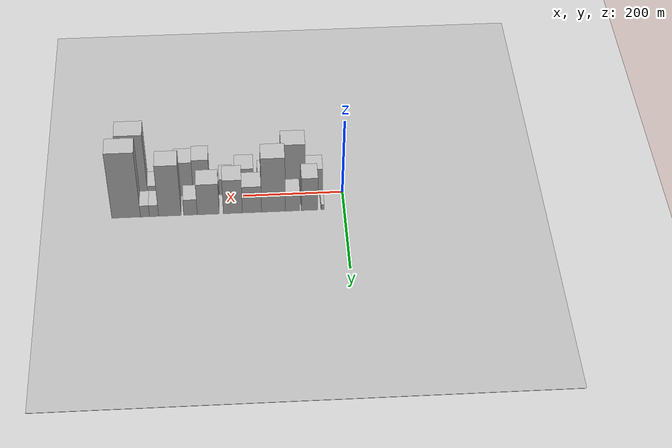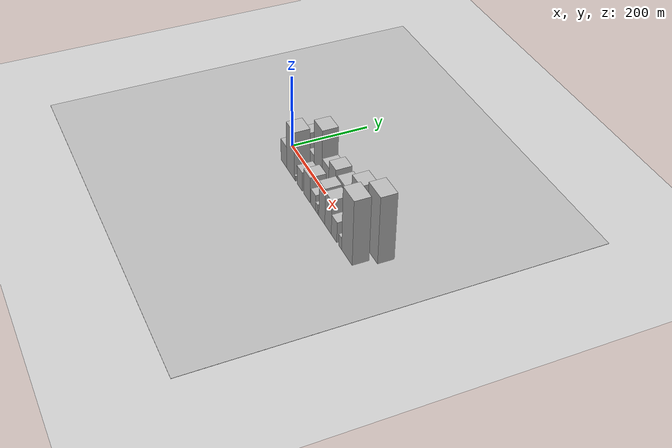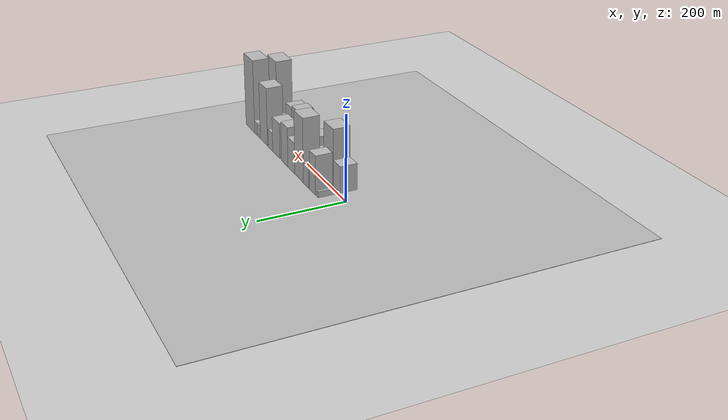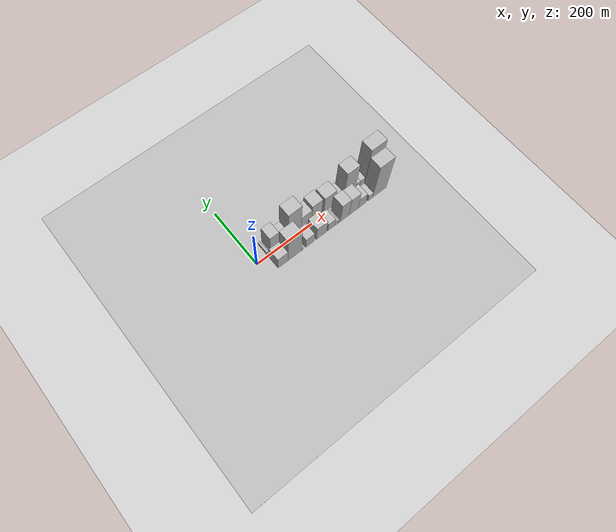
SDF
<?xml version="1.0" encoding="utf-8"?>

<sdf version="1.6">

   <world name="default">

      <gui fullscreen="0">

         <camera name="user_camera">

            <pose>-15 0 4.57585 0 0 0</pose>

            <view_controller>orbit</view_controller>

         </camera>

      </gui>

      <scene>

         <sky>

           <clouds>

             <speed>12</speed>

           </clouds>

         </sky>

         <ambient>0.4 0.4 0.4 1</ambient>

         <background>0.7 0.7 0.7 1</background>

         <shadows>1</shadows>

      </scene>

      <gravity>0 0 -9.8066</gravity>

      <magnetic_field>6e-06 2.3e-05 -4.2e-05</magnetic_field>

      <physics default="0" name="default_physics" type="ode">

         <ode>

            <solver>

               <type>quick</type>

               <iters>10</iters>

               <sor>1.0</sor>

               <use_dynamic_moi_rescaling>0</use_dynamic_moi_rescaling>

            </solver>

            <constraints>

               <cfm>0</cfm>

               <erp>0.2</erp>

               <contact_max_correcting_vel>100</contact_max_correcting_vel>

               <contact_surface_layer>0.001</contact_surface_layer>

            </constraints>

         </ode>

         <max_step_size>0.004</max_step_size>

         <real_time_factor>1</real_time_factor>

         <real_time_update_rate>250</real_time_update_rate>

      </physics>

      <light name="sun" type="directional">

         <cast_shadows>1</cast_shadows>

         <pose>0 0 10 0 0 0</pose>

         <diffuse>0.8 0.8 0.8 1</diffuse>

         <specular>0.2 0.2 0.2 1</specular>

         <attenuation>

            <range>1000</range>

            <constant>0.9</constant>

            <linear>0.01</linear>

            <quadratic>0.001</quadratic>

         </attenuation>

         <direction>-0.5 0.1 -0.9</direction>

      </light>

      <include>

         <name>ground_plane_1</name>

         <uri>model://HANNAS_ground_plane</uri>

         <pose>0 0 0  0 0 0</pose>

      </include>

      <include>

         <name>ground_plane_2</name>

         <uri>model://HANNAS_ground_plane</uri>

         <pose>100 0 0  0 0 0</pose>

      </include>

      <model name="building_1">

         <static>1</static>

         <pose frame="">43.1794 26.0000 0 0.000000 0.000000 1.570796</pose>

         <link name="link">

            <pose frame="">0 0 7.50 0 0 0</pose>

            <collision name="collision">

               <geometry>

                  <box>

                     <size>40.0000 6.3588 15.0000</size>

                  </box>

               </geometry>

               <max_contacts>10</max_contacts>

               <surface>

                  <contact>

                     <ode/>

                  </contact>

                  <bounce/>

                  <friction>

                     <torsional>

                        <ode/>

                     </torsional>

                     <ode/>

                  </friction>

               </surface>

            </collision>

            <visual name="visual">

               <cast_shadows>0</cast_shadows>

               <geometry>

                  <box>

                     <size>40.0000 6.3588 15.0000</size>

                  </box>

               </geometry>

               <material>

                  <script>

                     <uri>model://HANNAS_wall/materials/scripts</uri>

                     <uri>model://HANNAS_wall/materials/textures</uri>

                     <name>vrc/HANNAS_wall</name>

                  </script>

               </material>

            </visual>

            <self_collide>0</self_collide>

            <enable_wind>0</enable_wind>

            <kinematic>0</kinematic>

         </link>

      </model>

      <model name="building_2">

         <static>1</static>

         <pose frame="">69.4777 26.0000 0 0.000000 0.000000 1.570796</pose>

         <link name="link">

            <pose frame="">0 0 46.50 0 0 0</pose>

            <collision name="collision">

               <geometry>

                  <box>

                     <size>40.0000 32.2377 93.0000</size>

                  </box>

               </geometry>

               <max_contacts>10</max_contacts>

               <surface>

                  <contact>

                     <ode/>

                  </contact>

                  <bounce/>

                  <friction>

                     <torsional>

                        <ode/>

                     </torsional>

                     <ode/>

                  </friction>

               </surface>

            </collision>

            <visual name="visual">

               <cast_shadows>0</cast_shadows>

               <geometry>

                  <box>

                     <size>40.0000 32.2377 93.0000</size>

                  </box>

               </geometry>

               <material>

                  <script>

                     <uri>model://HANNAS_wall/materials/scripts</uri>

                     <uri>model://HANNAS_wall/materials/textures</uri>

                     <name>vrc/HANNAS_wall</name>

                  </script>

               </material>

            </visual>

            <self_collide>0</self_collide>

            <enable_wind>0</enable_wind>

            <kinematic>0</kinematic>

         </link>

      </model>

      <model name="building_3">

         <static>1</static>

         <pose frame="">103.2718 26.0000 0 0.000000 0.000000 1.570796</pose>

         <link name="link">

            <pose frame="">0 0 25.50 0 0 0</pose>

            <collision name="collision">

               <geometry>

                  <box>

                     <size>40.0000 29.3504 51.0000</size>

                  </box>

               </geometry>

               <max_contacts>10</max_contacts>

               <surface>

                  <contact>

                     <ode/>

                  </contact>

                  <bounce/>

                  <friction>

                     <torsional>

                        <ode/>

                     </torsional>

                     <ode/>

                  </friction>

               </surface>

            </collision>

            <visual name="visual">

               <cast_shadows>0</cast_shadows>

               <geometry>

                  <box>

                     <size>40.0000 29.3504 51.0000</size>

                  </box>

               </geometry>

               <material>

                  <script>

                     <uri>model://HANNAS_wall/materials/scripts</uri>

                     <uri>model://HANNAS_wall/materials/textures</uri>

                     <name>vrc/HANNAS_wall</name>

                  </script>

               </material>

            </visual>

            <self_collide>0</self_collide>

            <enable_wind>0</enable_wind>

            <kinematic>0</kinematic>

         </link>

      </model>

      <model name="building_4">

         <static>1</static>

         <pose frame="">141.5187 26.0000 0 0.000000 0.000000 1.570796</pose>

         <link name="link">

            <pose frame="">0 0 76.50 0 0 0</pose>

            <collision name="collision">

               <geometry>

                  <box>

                     <size>40.0000 47.1435 153.0000</size>

                  </box>

               </geometry>

               <max_contacts>10</max_contacts>

               <surface>

                  <contact>

                     <ode/>

                  </contact>

                  <bounce/>

                  <friction>

                     <torsional>

                        <ode/>

                     </torsional>

                     <ode/>

                  </friction>

               </surface>

            </collision>

            <visual name="visual">

               <cast_shadows>0</cast_shadows>

               <geometry>

                  <box>

                     <size>40.0000 47.1435 153.0000</size>

                  </box>

               </geometry>

               <material>

                  <script>

                     <uri>model://HANNAS_wall/materials/scripts</uri>

                     <uri>model://HANNAS_wall/materials/textures</uri>

                     <name>vrc/HANNAS_wall</name>

                  </script>

               </material>

            </visual>

            <self_collide>0</self_collide>

            <enable_wind>0</enable_wind>

            <kinematic>0</kinematic>

         </link>

      </model>

      <model name="building_5">

         <static>1</static>

         <pose frame="">184.1738 26.0000 0 0.000000 0.000000 1.570796</pose>

         <link name="link">

            <pose frame="">0 0 37.50 0 0 0</pose>

            <collision name="collision">

               <geometry>

                  <box>

                     <size>40.0000 38.1667 75.0000</size>

                  </box>

               </geometry>

               <max_contacts>10</max_contacts>

               <surface>

                  <contact>

                     <ode/>

                  </contact>

                  <bounce/>

                  <friction>

                     <torsional>

                        <ode/>

                     </torsional>

                     <ode/>

                  </friction>

               </surface>

            </collision>

            <visual name="visual">

               <cast_shadows>0</cast_shadows>

               <geometry>

                  <box>

                     <size>40.0000 38.1667 75.0000</size>

                  </box>

               </geometry>

               <material>

                  <script>

                     <uri>model://HANNAS_wall/materials/scripts</uri>

                     <uri>model://HANNAS_wall/materials/textures</uri>

                     <name>vrc/HANNAS_wall</name>

                  </script>

               </material>

            </visual>

            <self_collide>0</self_collide>

            <enable_wind>0</enable_wind>

            <kinematic>0</kinematic>

         </link>

      </model>

      <model name="building_6">

         <static>1</static>

         <pose frame="">222.2091 26.0000 0 0.000000 0.000000 1.570796</pose>

         <link name="link">

            <pose frame="">0 0 48.00 0 0 0</pose>

            <collision name="collision">

               <geometry>

                  <box>

                     <size>40.0000 37.9039 96.0000</size>

                  </box>

               </geometry>

               <max_contacts>10</max_contacts>

               <surface>

                  <contact>

                     <ode/>

                  </contact>

                  <bounce/>

                  <friction>

                     <torsional>

                        <ode/>

                     </torsional>

                     <ode/>

                  </friction>

               </surface>

            </collision>

            <visual name="visual">

               <cast_shadows>0</cast_shadows>

               <geometry>

                  <box>

                     <size>40.0000 37.9039 96.0000</size>

                  </box>

               </geometry>

               <material>

                  <script>

                     <uri>model://HANNAS_wall/materials/scripts</uri>

                     <uri>model://HANNAS_wall/materials/textures</uri>

                     <name>vrc/HANNAS_wall</name>

                  </script>

               </material>

            </visual>

            <self_collide>0</self_collide>

            <enable_wind>0</enable_wind>

            <kinematic>0</kinematic>

         </link>

      </model>

      <model name="building_7">

         <static>1</static>

         <pose frame="">271.0043 26.0000 0 0.000000 0.000000 1.570796</pose>

         <link name="link">

            <pose frame="">0 0 43.50 0 0 0</pose>

            <collision name="collision">

               <geometry>

                  <box>

                     <size>40.0000 43.6865 87.0000</size>

                  </box>

               </geometry>

               <max_contacts>10</max_contacts>

               <surface>

                  <contact>

                     <ode/>

                  </contact>

                  <bounce/>

                  <friction>

                     <torsional>

                        <ode/>

                     </torsional>

                     <ode/>

                  </friction>

               </surface>

            </collision>

            <visual name="visual">

               <cast_shadows>0</cast_shadows>

               <geometry>

                  <box>

                     <size>40.0000 43.6865 87.0000</size>

                  </box>

               </geometry>

               <material>

                  <script>

                     <uri>model://HANNAS_wall/materials/scripts</uri>

                     <uri>model://HANNAS_wall/materials/textures</uri>

                     <name>vrc/HANNAS_wall</name>

                  </script>

               </material>

            </visual>

            <self_collide>0</self_collide>

            <enable_wind>0</enable_wind>

            <kinematic>0</kinematic>

         </link>

      </model>

      <model name="building_8">

         <static>1</static>

         <pose frame="">306.3330 26.0000 0 0.000000 0.000000 1.570796</pose>

         <link name="link">

            <pose frame="">0 0 22.50 0 0 0</pose>

            <collision name="collision">

               <geometry>

                  <box>

                     <size>40.0000 26.9708 45.0000</size>

                  </box>

               </geometry>

               <max_contacts>10</max_contacts>

               <surface>

                  <contact>

                     <ode/>

                  </contact>

                  <bounce/>

                  <friction>

                     <torsional>

                        <ode/>

                     </torsional>

                     <ode/>

                  </friction>

               </surface>

            </collision>

            <visual name="visual">

               <cast_shadows>0</cast_shadows>

               <geometry>

                  <box>

                     <size>40.0000 26.9708 45.0000</size>

                  </box>

               </geometry>

               <material>

                  <script>

                     <uri>model://HANNAS_wall/materials/scripts</uri>

                     <uri>model://HANNAS_wall/materials/textures</uri>

                     <name>vrc/HANNAS_wall</name>

                  </script>

               </material>

            </visual>

            <self_collide>0</self_collide>

            <enable_wind>0</enable_wind>

            <kinematic>0</kinematic>

         </link>

      </model>

      <model name="building_9">

         <static>1</static>

         <pose frame="">347.2610 26.0000 0 0.000000 0.000000 1.570796</pose>

         <link name="link">

            <pose frame="">0 0 72.00 0 0 0</pose>

            <collision name="collision">

               <geometry>

                  <box>

                     <size>40.0000 44.8853 144.0000</size>

                  </box>

               </geometry>

               <max_contacts>10</max_contacts>

               <surface>

                  <contact>

                     <ode/>

                  </contact>

                  <bounce/>

                  <friction>

                     <torsional>

                        <ode/>

                     </torsional>

                     <ode/>

                  </friction>

               </surface>

            </collision>

            <visual name="visual">

               <cast_shadows>0</cast_shadows>

               <geometry>

                  <box>

                     <size>40.0000 44.8853 144.0000</size>

                  </box>

               </geometry>

               <material>

                  <script>

                     <uri>model://HANNAS_wall/materials/scripts</uri>

                     <uri>model://HANNAS_wall/materials/textures</uri>

                     <name>vrc/HANNAS_wall</name>

                  </script>

               </material>

            </visual>

            <self_collide>0</self_collide>

            <enable_wind>0</enable_wind>

            <kinematic>0</kinematic>

         </link>

      </model>

      <model name="building_10">

         <static>1</static>

         <pose frame="">378.7349 26.0000 0 0.000000 0.000000 1.570796</pose>

         <link name="link">

            <pose frame="">0 0 16.50 0 0 0</pose>

            <collision name="collision">

               <geometry>

                  <box>

                     <size>40.0000 18.0625 33.0000</size>

                  </box>

               </geometry>

               <max_contacts>10</max_contacts>

               <surface>

                  <contact>

                     <ode/>

                  </contact>

                  <bounce/>

                  <friction>

                     <torsional>

                        <ode/>

                     </torsional>

                     <ode/>

                  </friction>

               </surface>

            </collision>

            <visual name="visual">

               <cast_shadows>0</cast_shadows>

               <geometry>

                  <box>

                     <size>40.0000 18.0625 33.0000</size>

                  </box>

               </geometry>

               <material>

                  <script>

                     <uri>model://HANNAS_wall/materials/scripts</uri>

                     <uri>model://HANNAS_wall/materials/textures</uri>

                     <name>vrc/HANNAS_wall</name>

                  </script>

               </material>

            </visual>

            <self_collide>0</self_collide>

            <enable_wind>0</enable_wind>

            <kinematic>0</kinematic>

         </link>

      </model>

      <model name="building_11">

         <static>1</static>

         <pose frame="">396.6693 26.0000 0 0.000000 0.000000 1.570796</pose>

         <link name="link">

            <pose frame="">0 0 16.50 0 0 0</pose>

            <collision name="collision">

               <geometry>

                  <box>

                     <size>40.0000 17.8061 33.0000</size>

                  </box>

               </geometry>

               <max_contacts>10</max_contacts>

               <surface>

                  <contact>

                     <ode/>

                  </contact>

                  <bounce/>

                  <friction>

                     <torsional>

                        <ode/>

                     </torsional>

                     <ode/>

                  </friction>

               </surface>

            </collision>

            <visual name="visual">

               <cast_shadows>0</cast_shadows>

               <geometry>

                  <box>

                     <size>40.0000 17.8061 33.0000</size>

                  </box>

               </geometry>

               <material>

                  <script>

                     <uri>model://HANNAS_wall/materials/scripts</uri>

                     <uri>model://HANNAS_wall/materials/textures</uri>

                     <name>vrc/HANNAS_wall</name>

                  </script>

               </material>

            </visual>

            <self_collide>0</self_collide>

            <enable_wind>0</enable_wind>

            <kinematic>0</kinematic>

         </link>

      </model>

      <model name="building_12">

         <static>1</static>

         <pose frame="">433.9450 26.0000 0 0.000000 0.000000 1.570796</pose>

         <link name="link">

            <pose frame="">0 0 91.50 0 0 0</pose>

            <collision name="collision">

               <geometry>

                  <box>

                     <size>40.0000 56.7453 183.0000</size>

                  </box>

               </geometry>

               <max_contacts>10</max_contacts>

               <surface>

                  <contact>

                     <ode/>

                  </contact>

                  <bounce/>

                  <friction>

                     <torsional>

                        <ode/>

                     </torsional>

                     <ode/>

                  </friction>

               </surface>

            </collision>

            <visual name="visual">

               <cast_shadows>0</cast_shadows>

               <geometry>

                  <box>

                     <size>40.0000 56.7453 183.0000</size>

                  </box>

               </geometry>

               <material>

                  <script>

                     <uri>model://HANNAS_wall/materials/scripts</uri>

                     <uri>model://HANNAS_wall/materials/textures</uri>

                     <name>vrc/HANNAS_wall</name>

                  </script>

               </material>

            </visual>

            <self_collide>0</self_collide>

            <enable_wind>0</enable_wind>

            <kinematic>0</kinematic>

         </link>

      </model>

      <model name="building_13">

         <static>1</static>

         <pose frame="">57.9103 -26.0000 0 0.000000 0.000000 1.570796</pose>

         <link name="link">

            <pose frame="">0 0 31.50 0 0 0</pose>

            <collision name="collision">

               <geometry>

                  <box>

                     <size>40.0000 35.8206 63.0000</size>

                  </box>

               </geometry>

               <max_contacts>10</max_contacts>

               <surface>

                  <contact>

                     <ode/>

                  </contact>

                  <bounce/>

                  <friction>

                     <torsional>

                        <ode/>

                     </torsional>

                     <ode/>

                  </friction>

               </surface>

            </collision>

            <visual name="visual">

               <cast_shadows>0</cast_shadows>

               <geometry>

                  <box>

                     <size>40.0000 35.8206 63.0000</size>

                  </box>

               </geometry>

               <material>

                  <script>

                     <uri>model://HANNAS_wall/materials/scripts</uri>

                     <uri>model://HANNAS_wall/materials/textures</uri>

                     <name>vrc/HANNAS_wall</name>

                  </script>

               </material>

            </visual>

            <self_collide>0</self_collide>

            <enable_wind>0</enable_wind>

            <kinematic>0</kinematic>

         </link>

      </model>

      <model name="building_14">

         <static>1</static>

         <pose frame="">99.7468 -26.0000 0 0.000000 0.000000 1.570796</pose>

         <link name="link">

            <pose frame="">0 0 67.50 0 0 0</pose>

            <collision name="collision">

               <geometry>

                  <box>

                     <size>40.0000 47.8523 135.0000</size>

                  </box>

               </geometry>

               <max_contacts>10</max_contacts>

               <surface>

                  <contact>

                     <ode/>

                  </contact>

                  <bounce/>

                  <friction>

                     <torsional>

                        <ode/>

                     </torsional>

                     <ode/>

                  </friction>

               </surface>

            </collision>

            <visual name="visual">

               <cast_shadows>0</cast_shadows>

               <geometry>

                  <box>

                     <size>40.0000 47.8523 135.0000</size>

                  </box>

               </geometry>

               <material>

                  <script>

                     <uri>model://HANNAS_wall/materials/scripts</uri>

                     <uri>model://HANNAS_wall/materials/textures</uri>

                     <name>vrc/HANNAS_wall</name>

                  </script>

               </material>

            </visual>

            <self_collide>0</self_collide>

            <enable_wind>0</enable_wind>

            <kinematic>0</kinematic>

         </link>

      </model>

      <model name="building_15">

         <static>1</static>

         <pose frame="">127.0447 -26.0000 0 0.000000 0.000000 1.570796</pose>

         <link name="link">

            <pose frame="">0 0 7.50 0 0 0</pose>

            <collision name="collision">

               <geometry>

                  <box>

                     <size>40.0000 6.7435 15.0000</size>

                  </box>

               </geometry>

               <max_contacts>10</max_contacts>

               <surface>

                  <contact>

                     <ode/>

                  </contact>

                  <bounce/>

                  <friction>

                     <torsional>

                        <ode/>

                     </torsional>

                     <ode/>

                  </friction>

               </surface>

            </collision>

            <visual name="visual">

               <cast_shadows>0</cast_shadows>

               <geometry>

                  <box>

                     <size>40.0000 6.7435 15.0000</size>

                  </box>

               </geometry>

               <material>

                  <script>

                     <uri>model://HANNAS_wall/materials/scripts</uri>

                     <uri>model://HANNAS_wall/materials/textures</uri>

                     <name>vrc/HANNAS_wall</name>

                  </script>

               </material>

            </visual>

            <self_collide>0</self_collide>

            <enable_wind>0</enable_wind>

            <kinematic>0</kinematic>

         </link>

      </model>

      <model name="building_16">

         <static>1</static>

         <pose frame="">155.0253 -26.0000 0 0.000000 0.000000 1.570796</pose>

         <link name="link">

            <pose frame="">0 0 27.00 0 0 0</pose>

            <collision name="collision">

               <geometry>

                  <box>

                     <size>40.0000 31.2176 54.0000</size>

                  </box>

               </geometry>

               <max_contacts>10</max_contacts>

               <surface>

                  <contact>

                     <ode/>

                  </contact>

                  <bounce/>

                  <friction>

                     <torsional>

                        <ode/>

                     </torsional>

                     <ode/>

                  </friction>

               </surface>

            </collision>

            <visual name="visual">

               <cast_shadows>0</cast_shadows>

               <geometry>

                  <box>

                     <size>40.0000 31.2176 54.0000</size>

                  </box>

               </geometry>

               <material>

                  <script>

                     <uri>model://HANNAS_wall/materials/scripts</uri>

                     <uri>model://HANNAS_wall/materials/textures</uri>

                     <name>vrc/HANNAS_wall</name>

                  </script>

               </material>

            </visual>

            <self_collide>0</self_collide>

            <enable_wind>0</enable_wind>

            <kinematic>0</kinematic>

         </link>

      </model>

      <model name="building_17">

         <static>1</static>

         <pose frame="">197.4260 -26.0000 0 0.000000 0.000000 1.570796</pose>

         <link name="link">

            <pose frame="">0 0 36.00 0 0 0</pose>

            <collision name="collision">

               <geometry>

                  <box>

                     <size>40.0000 37.5838 72.0000</size>

                  </box>

               </geometry>

               <max_contacts>10</max_contacts>

               <surface>

                  <contact>

                     <ode/>

                  </contact>

                  <bounce/>

                  <friction>

                     <torsional>

                        <ode/>

                     </torsional>

                     <ode/>

                  </friction>

               </surface>

            </collision>

            <visual name="visual">

               <cast_shadows>0</cast_shadows>

               <geometry>

                  <box>

                     <size>40.0000 37.5838 72.0000</size>

                  </box>

               </geometry>

               <material>

                  <script>

                     <uri>model://HANNAS_wall/materials/scripts</uri>

                     <uri>model://HANNAS_wall/materials/textures</uri>

                     <name>vrc/HANNAS_wall</name>

                  </script>

               </material>

            </visual>

            <self_collide>0</self_collide>

            <enable_wind>0</enable_wind>

            <kinematic>0</kinematic>

         </link>

      </model>

      <model name="building_18">

         <static>1</static>

         <pose frame="">234.6082 -26.0000 0 0.000000 0.000000 1.570796</pose>

         <link name="link">

            <pose frame="">0 0 22.50 0 0 0</pose>

            <collision name="collision">

               <geometry>

                  <box>

                     <size>40.0000 26.7806 45.0000</size>

                  </box>

               </geometry>

               <max_contacts>10</max_contacts>

               <surface>

                  <contact>

                     <ode/>

                  </contact>

                  <bounce/>

                  <friction>

                     <torsional>

                        <ode/>

                     </torsional>

                     <ode/>

                  </friction>

               </surface>

            </collision>

            <visual name="visual">

               <cast_shadows>0</cast_shadows>

               <geometry>

                  <box>

                     <size>40.0000 26.7806 45.0000</size>

                  </box>

               </geometry>

               <material>

                  <script>

                     <uri>model://HANNAS_wall/materials/scripts</uri>

                     <uri>model://HANNAS_wall/materials/textures</uri>

                     <name>vrc/HANNAS_wall</name>

                  </script>

               </material>

            </visual>

            <self_collide>0</self_collide>

            <enable_wind>0</enable_wind>

            <kinematic>0</kinematic>

         </link>

      </model>

      <model name="building_19">

         <static>1</static>

         <pose frame="">253.9170 -26.0000 0 0.000000 0.000000 1.570796</pose>

         <link name="link">

            <pose frame="">0 0 13.50 0 0 0</pose>

            <collision name="collision">

               <geometry>

                  <box>

                     <size>40.0000 11.8370 27.0000</size>

                  </box>

               </geometry>

               <max_contacts>10</max_contacts>

               <surface>

                  <contact>

                     <ode/>

                  </contact>

                  <bounce/>

                  <friction>

                     <torsional>

                        <ode/>

                     </torsional>

                     <ode/>

                  </friction>

               </surface>

            </collision>

            <visual name="visual">

               <cast_shadows>0</cast_shadows>

               <geometry>

                  <box>

                     <size>40.0000 11.8370 27.0000</size>

                  </box>

               </geometry>

               <material>

                  <script>

                     <uri>model://HANNAS_wall/materials/scripts</uri>

                     <uri>model://HANNAS_wall/materials/textures</uri>

                     <name>vrc/HANNAS_wall</name>

                  </script>

               </material>

            </visual>

            <self_collide>0</self_collide>

            <enable_wind>0</enable_wind>

            <kinematic>0</kinematic>

         </link>

      </model>

      <model name="building_20">

         <static>1</static>

         <pose frame="">263.4248 -26.0000 0 0.000000 0.000000 1.570796</pose>

         <link name="link">

            <pose frame="">0 0 7.50 0 0 0</pose>

            <collision name="collision">

               <geometry>

                  <box>

                     <size>40.0000 7.1785 15.0000</size>

                  </box>

               </geometry>

               <max_contacts>10</max_contacts>

               <surface>

                  <contact>

                     <ode/>

                  </contact>

                  <bounce/>

                  <friction>

                     <torsional>

                        <ode/>

                     </torsional>

                     <ode/>

                  </friction>

               </surface>

            </collision>

            <visual name="visual">

               <cast_shadows>0</cast_shadows>

               <geometry>

                  <box>

                     <size>40.0000 7.1785 15.0000</size>

                  </box>

               </geometry>

               <material>

                  <script>

                     <uri>model://HANNAS_wall/materials/scripts</uri>

                     <uri>model://HANNAS_wall/materials/textures</uri>

                     <name>vrc/HANNAS_wall</name>

                  </script>

               </material>

            </visual>

            <self_collide>0</self_collide>

            <enable_wind>0</enable_wind>

            <kinematic>0</kinematic>

         </link>

      </model>

      <model name="building_21">

         <static>1</static>

         <pose frame="">283.6325 -26.0000 0 0.000000 0.000000 1.570796</pose>

         <link name="link">

            <pose frame="">0 0 51.00 0 0 0</pose>

            <collision name="collision">

               <geometry>

                  <box>

                     <size>40.0000 33.2369 102.0000</size>

                  </box>

               </geometry>

               <max_contacts>10</max_contacts>

               <surface>

                  <contact>

                     <ode/>

                  </contact>

                  <bounce/>

                  <friction>

                     <torsional>

                        <ode/>

                     </torsional>

                     <ode/>

                  </friction>

               </surface>

            </collision>

            <visual name="visual">

               <cast_shadows>0</cast_shadows>

               <geometry>

                  <box>

                     <size>40.0000 33.2369 102.0000</size>

                  </box>

               </geometry>

               <material>

                  <script>

                     <uri>model://HANNAS_wall/materials/scripts</uri>

                     <uri>model://HANNAS_wall/materials/textures</uri>

                     <name>vrc/HANNAS_wall</name>

                  </script>

               </material>

            </visual>

            <self_collide>0</self_collide>

            <enable_wind>0</enable_wind>

            <kinematic>0</kinematic>

         </link>

      </model>

      <model name="building_22">

         <static>1</static>

         <pose frame="">317.9936 -26.0000 0 0.000000 0.000000 1.570796</pose>

         <link name="link">

            <pose frame="">0 0 48.00 0 0 0</pose>

            <collision name="collision">

               <geometry>

                  <box>

                     <size>40.0000 35.4853 96.0000</size>

                  </box>

               </geometry>

               <max_contacts>10</max_contacts>

               <surface>

                  <contact>

                     <ode/>

                  </contact>

                  <bounce/>

                  <friction>

                     <torsional>

                        <ode/>

                     </torsional>

                     <ode/>

                  </friction>

               </surface>

            </collision>

            <visual name="visual">

               <cast_shadows>0</cast_shadows>

               <geometry>

                  <box>

                     <size>40.0000 35.4853 96.0000</size>

                  </box>

               </geometry>

               <material>

                  <script>

                     <uri>model://HANNAS_wall/materials/scripts</uri>

                     <uri>model://HANNAS_wall/materials/textures</uri>

                     <name>vrc/HANNAS_wall</name>

                  </script>

               </material>

            </visual>

            <self_collide>0</self_collide>

            <enable_wind>0</enable_wind>

            <kinematic>0</kinematic>

         </link>

      </model>

      <model name="building_23">

         <static>1</static>

         <pose frame="">350.4928 -26.0000 0 0.000000 0.000000 1.570796</pose>

         <link name="link">

            <pose frame="">0 0 28.50 0 0 0</pose>

            <collision name="collision">

               <geometry>

                  <box>

                     <size>40.0000 29.5131 57.0000</size>

                  </box>

               </geometry>

               <max_contacts>10</max_contacts>

               <surface>

                  <contact>

                     <ode/>

                  </contact>

                  <bounce/>

                  <friction>

                     <torsional>

                        <ode/>

                     </torsional>

                     <ode/>

                  </friction>

               </surface>

            </collision>

            <visual name="visual">

               <cast_shadows>0</cast_shadows>

               <geometry>

                  <box>

                     <size>40.0000 29.5131 57.0000</size>

                  </box>

               </geometry>

               <material>

                  <script>

                     <uri>model://HANNAS_wall/materials/scripts</uri>

                     <uri>model://HANNAS_wall/materials/textures</uri>

                     <name>vrc/HANNAS_wall</name>

                  </script>

               </material>

            </visual>

            <self_collide>0</self_collide>

            <enable_wind>0</enable_wind>

            <kinematic>0</kinematic>

         </link>

      </model>

      <model name="building_24">

         <static>1</static>

         <pose frame="">382.6350 -26.0000 0 0.000000 0.000000 1.570796</pose>

         <link name="link">

            <pose frame="">0 0 16.50 0 0 0</pose>

            <collision name="collision">

               <geometry>

                  <box>

                     <size>40.0000 16.7714 33.0000</size>

                  </box>

               </geometry>

               <max_contacts>10</max_contacts>

               <surface>

                  <contact>

                     <ode/>

                  </contact>

                  <bounce/>

                  <friction>

                     <torsional>

                        <ode/>

                     </torsional>

                     <ode/>

                  </friction>

               </surface>

            </collision>

            <visual name="visual">

               <cast_shadows>0</cast_shadows>

               <geometry>

                  <box>

                     <size>40.0000 16.7714 33.0000</size>

                  </box>

               </geometry>

               <material>

                  <script>

                     <uri>model://HANNAS_wall/materials/scripts</uri>

                     <uri>model://HANNAS_wall/materials/textures</uri>

                     <name>vrc/HANNAS_wall</name>

                  </script>

               </material>

            </visual>

            <self_collide>0</self_collide>

            <enable_wind>0</enable_wind>

            <kinematic>0</kinematic>

         </link>

      </model>

      <model name="building_25">

         <static>1</static>

         <pose frame="">418.2347 -26.0000 0 0.000000 0.000000 1.570796</pose>

         <link name="link">

            <pose frame="">0 0 88.50 0 0 0</pose>

            <collision name="collision">

               <geometry>

                  <box>

                     <size>40.0000 54.4279 177.0000</size>

                  </box>

               </geometry>

               <max_contacts>10</max_contacts>

               <surface>

                  <contact>

                     <ode/>

                  </contact>

                  <bounce/>

                  <friction>

                     <torsional>

                        <ode/>

                     </torsional>

                     <ode/>

                  </friction>

               </surface>

            </collision>

            <visual name="visual">

               <cast_shadows>0</cast_shadows>

               <geometry>

                  <box>

                     <size>40.0000 54.4279 177.0000</size>

                  </box>

               </geometry>

               <material>

                  <script>

                     <uri>model://HANNAS_wall/materials/scripts</uri>

                     <uri>model://HANNAS_wall/materials/textures</uri>

                     <name>vrc/HANNAS_wall</name>

                  </script>

               </material>

            </visual>

            <self_collide>0</self_collide>

            <enable_wind>0</enable_wind>

            <kinematic>0</kinematic>

         </link>

      </model>

   </world>

</sdf>

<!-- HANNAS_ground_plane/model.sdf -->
<sdf version="1.4">
<model name="HANNAS_ground_plane">
  <static>true</static>
    <link name="link">
      <collision name="collision">
        <geometry>
          <plane>
            <normal>0 0 1</normal>
            <size>1000 1000</size>
          </plane>
        </geometry>
        <surface>
          <friction>
            <ode>
              <mu>100</mu>
              <mu2>50</mu2>
            </ode>
          </friction>
        </surface>
      </collision>
      <visual name="visual">
        <cast_shadows>false</cast_shadows>
        <geometry>
          <plane>
            <normal>0 0 1</normal>
            <size>1000 1000</size>
          </plane>
        </geometry>
        <material>
          <script>
            <uri>model://HANNAS_ground_plane/materials/scripts/HANNAS_ground_plane.material</uri>
	    <uri>model://HANNAS_ground_plane/materials/textures</uri>
            <name>HANNASGroundPlane/Image</name>
          </script>
        </material>
      </visual>
    </link>
  </model>
</sdf>
